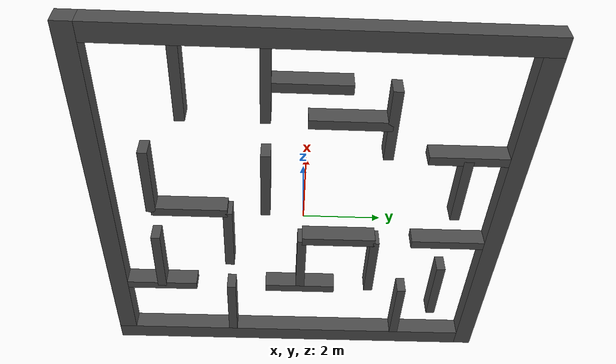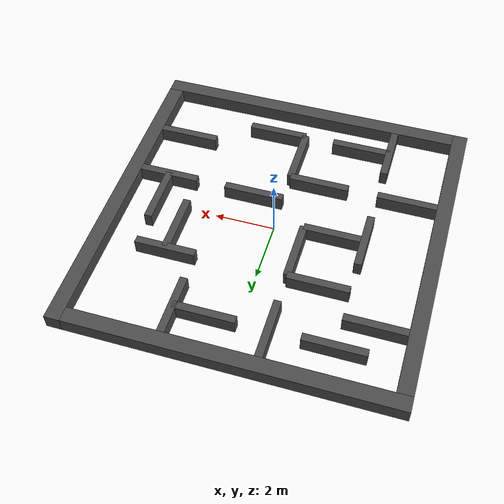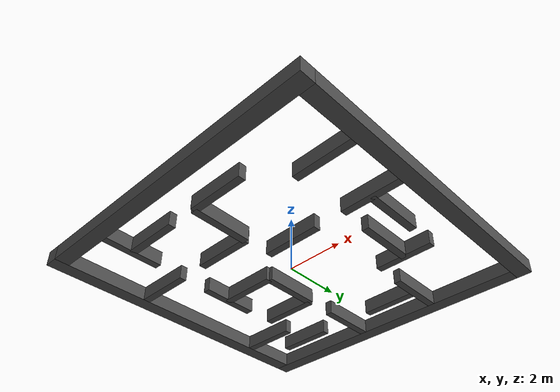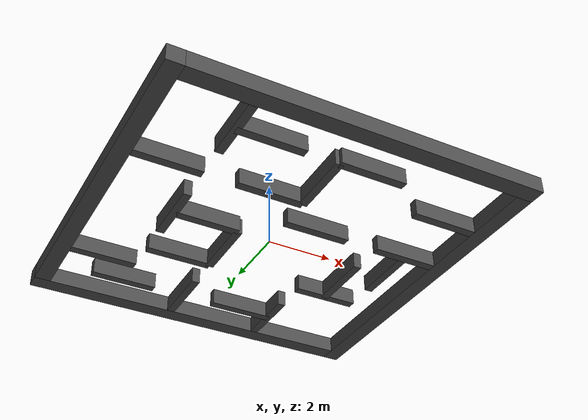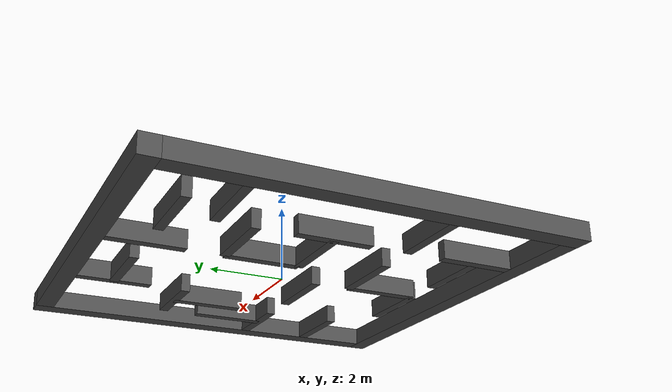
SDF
<?xml version='1.0'?>
<sdf version='1.7'>
  <model name='maze_light'>
    <pose>0 0 0 0 0 0</pose>
    <link name='Outer_Wall_0'>
      <collision name='Wall_0_Collision'>
        <geometry>
          <box>
            <size>10.5 0.5 0.5</size>
          </box>
        </geometry>
        <pose>0 0 0 0 -0 0</pose>
      </collision>
      <visual name='Wall_0_Visual'>
        <pose>0 0 0 0 -0 0</pose>
        <geometry>
          <box>
            <size>10.5 0.5 0.5</size>
          </box>
        </geometry>
        <material>
          <script>
            <uri>file://media/materials/scripts/gazebo.material</uri>
            <name>Gazebo/DarkGrey</name>
          </script>
          <ambient>0 0 0 1</ambient>
        </material>
        <meta>
          <layer>0</layer>
        </meta>
      </visual>
      <pose>5.25 0.25 0.25 0 0 -1.5708</pose>
    </link>
    <link name='Outer_Wall_1'>
      <collision name='Wall_1_Collision'>
        <geometry>
          <box>
            <size>10.5 0.5 0.5</size>
          </box>
        </geometry>
        <pose>0 0 0 0 -0 0</pose>
      </collision>
      <visual name='Wall_1_Visual'>
        <pose>0 0 0 0 -0 0</pose>
        <geometry>
          <box>
            <size>10.5 0.5 0.5</size>
          </box>
        </geometry>
        <material>
          <script>
            <uri>file://media/materials/scripts/gazebo.material</uri>
            <name>Gazebo/DarkGrey</name>
          </script>
          <ambient>0 0 0 1</ambient>
        </material>
        <meta>
          <layer>0</layer>
        </meta>
      </visual>
      <pose>-0.25 5.25 0.25 0 0 0</pose>
    </link>
    <link name='Outer_Wall_2'>
      <collision name='Wall_2_Collision'>
        <geometry>
          <box>
            <size>10.5 0.5 0.5</size>
          </box>
        </geometry>
        <pose>0 0 0 0 -0 0</pose>
      </collision>
      <visual name='Wall_2_Visual'>
        <pose>0 0 0 0 -0 0</pose>
        <geometry>
          <box>
            <size>10.5 0.5 0.5</size>
          </box>
        </geometry>
        <material>
          <script>
            <uri>file://media/materials/scripts/gazebo.material</uri>
            <name>Gazebo/DarkGrey</name>
          </script>
          <ambient>0 0 0 1</ambient>
        </material>
        <meta>
          <layer>0</layer>
        </meta>
      </visual>
      <pose>-5.25 -0.25 0.25 0 0 1.5708</pose>
    </link>
    <link name='Outer_Wall_3'>
      <collision name='Wall_3_Collision'>
        <geometry>
          <box>
            <size>10.5 0.5 0.5</size>
          </box>
        </geometry>
        <pose>0 0 0 0 -0 0</pose>
      </collision>
      <visual name='Wall_3_Visual'>
        <pose>0 0 0 0 -0 0</pose>
        <geometry>
          <box>
            <size>10.5 0.5 0.5</size>
          </box>
        </geometry>
        <material>
          <script>
            <uri>file://media/materials/scripts/gazebo.material</uri>
            <name>Gazebo/DarkGrey</name>
          </script>
          <ambient>0 0 0 1</ambient>
        </material>
        <meta>
          <layer>0</layer>
        </meta>
      </visual>
      <pose>0.25 -5.25 0.25 0 0 0</pose>
    </link>
    <link name='Inner_Wall_0'>
      <collision name='Inner_Wall_0_Collision'>
        <geometry>
          <box>
            <size>2 0.25 0.5</size>
          </box>
        </geometry>
        <pose>0 0 0 0 -0 0</pose>
      </collision>
      <visual name='Inner_Wall_0_Visual'>
        <pose>0 0 0 0 -0 0</pose>
        <geometry>
          <box>
            <size>2 0.25 0.5</size>
          </box>
        </geometry>
        <material>
          <script>
            <uri>file://media/materials/scripts/gazebo.material</uri>
            <name>Gazebo/DarkGrey</name>
          </script>
          <ambient>0 0 0 1</ambient>
        </material>
        <meta>
          <layer>0</layer>
        </meta>
      </visual>
      <pose>4 -3 0.25 0 -0 0</pose>
    </link>
    <link name='Inner_Wall_1'>
      <collision name='Inner_Wall_1_Collision'>
        <geometry>
          <box>
            <size>2 0.25 0.5</size>
          </box>
        </geometry>
        <pose>0 0 0 0 -0 0</pose>
      </collision>
      <visual name='Inner_Wall_1_Visual'>
        <pose>0 0 0 0 -0 0</pose>
        <geometry>
          <box>
            <size>2 0.25 0.5</size>
          </box>
        </geometry>
        <material>
          <script>
            <uri>file://media/materials/scripts/gazebo.material</uri>
            <name>Gazebo/DarkGrey</name>
          </script>
          <ambient>0 0 0 1</ambient>
        </material>
        <meta>
          <layer>0</layer>
        </meta>
      </visual>
      <pose>4 -1 0.25 0 -0 0</pose>
    </link>
    <link name='Inner_Wall_2'>
      <collision name='Inner_Wall_2_Collision'>
        <geometry>
          <box>
            <size>2 0.25 0.5</size>
          </box>
        </geometry>
        <pose>0 0 0 0 -0 0</pose>
      </collision>
      <visual name='Inner_Wall_2_Visual'>
        <pose>0 0 0 0 -0 0</pose>
        <geometry>
          <box>
            <size>2 0.25 0.5</size>
          </box>
        </geometry>
        <material>
          <script>
            <uri>file://media/materials/scripts/gazebo.material</uri>
            <name>Gazebo/DarkGrey</name>
          </script>
          <ambient>0 0 0 1</ambient>
        </material>
        <meta>
          <layer>0</layer>
        </meta>
      </visual>
      <pose>1 4 0.25 0 -0 0</pose>
    </link>
    <link name='Inner_Wall_3'>
      <collision name='Inner_Wall_3_Collision'>
        <geometry>
          <box>
            <size>2 0.25 0.5</size>
          </box>
        </geometry>
        <pose>0 0 0 0 -0 0</pose>
      </collision>
      <visual name='Inner_Wall_3_Visual'>
        <pose>0 0 0 0 -0 0</pose>
        <geometry>
          <box>
            <size>2 0.25 0.5</size>
          </box>
        </geometry>
        <material>
          <script>
            <uri>file://media/materials/scripts/gazebo.material</uri>
            <name>Gazebo/DarkGrey</name>
          </script>
          <ambient>0 0 0 1</ambient>
        </material>
        <meta>
          <layer>0</layer>
        </meta>
      </visual>
      <pose>2 4 0.25 0 -0 1.5708</pose>
    </link>
    <link name='Inner_Wall_4'>
      <collision name='Inner_Wall_4_Collision'>
        <geometry>
          <box>
            <size>2 0.25 0.5</size>
          </box>
        </geometry>
        <pose>0 0 0 0 -0 0</pose>
      </collision>
      <visual name='Inner_Wall_4_Visual'>
        <pose>0 0 0 0 -0 0</pose>
        <geometry>
          <box>
            <size>2 0.25 0.5</size>
          </box>
        </geometry>
        <material>
          <script>
            <uri>file://media/materials/scripts/gazebo.material</uri>
            <name>Gazebo/DarkGrey</name>
          </script>
          <ambient>0 0 0 1</ambient>
        </material>
        <meta>
          <layer>0</layer>
        </meta>
      </visual>
      <pose>-1 4 0.25 0 -0 1.5708</pose>
    </link>
    <link name='Inner_Wall_5'>
      <collision name='Inner_Wall_5_Collision'>
        <geometry>
          <box>
            <size>2 0.25 0.5</size>
          </box>
        </geometry>
        <pose>0 0 0 0 -0 0</pose>
      </collision>
      <visual name='Inner_Wall_5_Visual'>
        <pose>0 0 0 0 -0 0</pose>
        <geometry>
          <box>
            <size>2 0.25 0.5</size>
          </box>
        </geometry>
        <material>
          <script>
            <uri>file://media/materials/scripts/gazebo.material</uri>
            <name>Gazebo/DarkGrey</name>
          </script>
          <ambient>0 0 0 1</ambient>
        </material>
        <meta>
          <layer>0</layer>
        </meta>
      </visual>
      <pose>-2 2 0.25 0 -0 0</pose>
    </link>
    <link name='Inner_Wall_6'>
      <collision name='Inner_Wall_6_Collision'>
        <geometry>
          <box>
            <size>2 0.25 0.5</size>
          </box>
        </geometry>
        <pose>0 0 0 0 -0 0</pose>
      </collision>
      <visual name='Inner_Wall_6_Visual'>
        <pose>0 0 0 0 -0 0</pose>
        <geometry>
          <box>
            <size>2 0.25 0.5</size>
          </box>
        </geometry>
        <material>
          <script>
            <uri>file://media/materials/scripts/gazebo.material</uri>
            <name>Gazebo/DarkGrey</name>
          </script>
          <ambient>0 0 0 1</ambient>
        </material>
        <meta>
          <layer>0</layer>
        </meta>
      </visual>
      <pose>-2 0 0.25 0 -0 0</pose>
    </link>
    <link name='Inner_Wall_7'>
      <collision name='Inner_Wall_7_Collision'>
        <geometry>
          <box>
            <size>2 0.25 0.5</size>
          </box>
        </geometry>
        <pose>0 0 0 0 -0 0</pose>
      </collision>
      <visual name='Inner_Wall_7_Visual'>
        <pose>0 0 0 0 -0 0</pose>
        <geometry>
          <box>
            <size>2 0.25 0.5</size>
          </box>
        </geometry>
        <material>
          <script>
            <uri>file://media/materials/scripts/gazebo.material</uri>
            <name>Gazebo/DarkGrey</name>
          </script>
          <ambient>0 0 0 1</ambient>
        </material>
        <meta>
          <layer>0</layer>
        </meta>
      </visual>
      <pose>-1 -2 0.25 0 -0 0</pose>
    </link>
    <link name='Inner_Wall_8'>
      <collision name='Inner_Wall_8_Collision'>
        <geometry>
          <box>
            <size>2 0.25 0.5</size>
          </box>
        </geometry>
        <pose>0 0 0 0 -0 0</pose>
      </collision>
      <visual name='Inner_Wall_8_Visual'>
        <pose>0 0 0 0 -0 0</pose>
        <geometry>
          <box>
            <size>2 0.25 0.5</size>
          </box>
        </geometry>
        <material>
          <script>
            <uri>file://media/materials/scripts/gazebo.material</uri>
            <name>Gazebo/DarkGrey</name>
          </script>
          <ambient>0 0 0 1</ambient>
        </material>
        <meta>
          <layer>0</layer>
        </meta>
      </visual>
      <pose>1 -4 0.25 0 -0 0</pose>
    </link>
    <link name='Inner_Wall_9'>
      <collision name='Inner_Wall_9_Collision'>
        <geometry>
          <box>
            <size>2 0.25 0.5</size>
          </box>
        </geometry>
        <pose>0 0 0 0 -0 0</pose>
      </collision>
      <visual name='Inner_Wall_9_Visual'>
        <pose>0 0 0 0 -0 0</pose>
        <geometry>
          <box>
            <size>2 0.25 0.5</size>
          </box>
        </geometry>
        <material>
          <script>
            <uri>file://media/materials/scripts/gazebo.material</uri>
            <name>Gazebo/DarkGrey</name>
          </script>
          <ambient>0 0 0 1</ambient>
        </material>
        <meta>
          <layer>0</layer>
        </meta>
      </visual>
      <pose>3 2 0.25 0 -0 0</pose>
    </link>
    <link name='Inner_Wall_10'>
      <collision name='Inner_Wall_10_Collision'>
        <geometry>
          <box>
            <size>2 0.25 0.5</size>
          </box>
        </geometry>
        <pose>0 0 0 0 -0 0</pose>
      </collision>
      <visual name='Inner_Wall_10_Visual'>
        <pose>0 0 0 0 -0 0</pose>
        <geometry>
          <box>
            <size>2 0.25 0.5</size>
          </box>
        </geometry>
        <material>
          <script>
            <uri>file://media/materials/scripts/gazebo.material</uri>
            <name>Gazebo/DarkGrey</name>
          </script>
          <ambient>0 0 0 1</ambient>
        </material>
        <meta>
          <layer>0</layer>
        </meta>
      </visual>
      <pose>3 1 0.25 0 -0 1.5708</pose>
    </link>
    <link name='Inner_Wall_11'>
      <collision name='Inner_Wall_11_Collision'>
        <geometry>
          <box>
            <size>2 0.25 0.5</size>
          </box>
        </geometry>
        <pose>0 0 0 0 -0 0</pose>
      </collision>
      <visual name='Inner_Wall_11_Visual'>
        <pose>0 0 0 0 -0 0</pose>
        <geometry>
          <box>
            <size>2 0.25 0.5</size>
          </box>
        </geometry>
        <material>
          <script>
            <uri>file://media/materials/scripts/gazebo.material</uri>
            <name>Gazebo/DarkGrey</name>
          </script>
          <ambient>0 0 0 1</ambient>
        </material>
        <meta>
          <layer>0</layer>
        </meta>
      </visual>
      <pose>-1 1 0.25 0 -0 1.5708</pose>
    </link>
    <link name='Inner_Wall_12'>
      <collision name='Inner_Wall_12_Collision'>
        <geometry>
          <box>
            <size>2 0.25 0.5</size>
          </box>
        </geometry>
        <pose>0 0 0 0 -0 0</pose>
      </collision>
      <visual name='Inner_Wall_12_Visual'>
        <pose>0 0 0 0 -0 0</pose>
        <geometry>
          <box>
            <size>2 0.25 0.5</size>
          </box>
        </geometry>
        <material>
          <script>
            <uri>file://media/materials/scripts/gazebo.material</uri>
            <name>Gazebo/DarkGrey</name>
          </script>
          <ambient>0 0 0 1</ambient>
        </material>
        <meta>
          <layer>0</layer>
        </meta>
      </visual>
      <pose>0 -3 0.25 0 -0 1.5708</pose>
    </link>
    <link name='Inner_Wall_13'>
      <collision name='Inner_Wall_13_Collision'>
        <geometry>
          <box>
            <size>2 0.25 0.5</size>
          </box>
        </geometry>
        <pose>0 0 0 0 -0 0</pose>
      </collision>
      <visual name='Inner_Wall_13_Visual'>
        <pose>0 0 0 0 -0 0</pose>
        <geometry>
          <box>
            <size>2 0.25 0.5</size>
          </box>
        </geometry>
        <material>
          <script>
            <uri>file://media/materials/scripts/gazebo.material</uri>
            <name>Gazebo/DarkGrey</name>
          </script>
          <ambient>0 0 0 1</ambient>
        </material>
        <meta>
          <layer>0</layer>
        </meta>
      </visual>
      <pose>1 -1 0.25 0 -0 0</pose>
    </link>
    <link name='Inner_Wall_14'>
      <collision name='Inner_Wall_14_Collision'>
        <geometry>
          <box>
            <size>2 0.25 0.5</size>
          </box>
        </geometry>
        <pose>0 0 0 0 -0 0</pose>
      </collision>
      <visual name='Inner_Wall_14_Visual'>
        <pose>0 0 0 0 -0 0</pose>
        <geometry>
          <box>
            <size>2 0.25 0.5</size>
          </box>
        </geometry>
        <material>
          <script>
            <uri>file://media/materials/scripts/gazebo.material</uri>
            <name>Gazebo/DarkGrey</name>
          </script>
          <ambient>0 0 0 1</ambient>
        </material>
        <meta>
          <layer>0</layer>
        </meta>
      </visual>
      <pose>-3 4 0.25 0 -0 0</pose>
    </link>
    <link name='Inner_Wall_15'>
      <collision name='Inner_Wall_15_Collision'>
        <geometry>
          <box>
            <size>2 0.25 0.5</size>
          </box>
        </geometry>
        <pose>0 0 0 0 -0 0</pose>
      </collision>
      <visual name='Inner_Wall_15_Visual'>
        <pose>0 0 0 0 -0 0</pose>
        <geometry>
          <box>
            <size>2 0.25 0.5</size>
          </box>
        </geometry>
        <material>
          <script>
            <uri>file://media/materials/scripts/gazebo.material</uri>
            <name>Gazebo/DarkGrey</name>
          </script>
          <ambient>0 0 0 1</ambient>
        </material>
        <meta>
          <layer>0</layer>
        </meta>
      </visual>
      <pose>4 0 0.25 0 -0 1.5708</pose>
    </link>
    <link name='Inner_Wall_16'>
      <collision name='Inner_Wall_16_Collision'>
        <geometry>
          <box>
            <size>2 0.25 0.5</size>
          </box>
        </geometry>
        <pose>0 0 0 0 -0 0</pose>
      </collision>
      <visual name='Inner_Wall_16_Visual'>
        <pose>0 0 0 0 -0 0</pose>
        <geometry>
          <box>
            <size>2 0.25 0.5</size>
          </box>
        </geometry>
        <material>
          <script>
            <uri>file://media/materials/scripts/gazebo.material</uri>
            <name>Gazebo/DarkGrey</name>
          </script>
          <ambient>0 0 0 1</ambient>
        </material>
        <meta>
          <layer>0</layer>
        </meta>
      </visual>
      <pose>-4 3 0.25 0 -0 0</pose>
    </link>
    <link name='Inner_Wall_17'>
      <collision name='Inner_Wall_17_Collision'>
        <geometry>
          <box>
            <size>2 0.25 0.5</size>
          </box>
        </geometry>
        <pose>0 0 0 0 -0 0</pose>
      </collision>
      <visual name='Inner_Wall_17_Visual'>
        <pose>0 0 0 0 -0 0</pose>
        <geometry>
          <box>
            <size>2 0.25 0.5</size>
          </box>
        </geometry>
        <material>
          <script>
            <uri>file://media/materials/scripts/gazebo.material</uri>
            <name>Gazebo/DarkGrey</name>
          </script>
          <ambient>0 0 0 1</ambient>
        </material>
        <meta>
          <layer>0</layer>
        </meta>
      </visual>
      <pose>-3 0 0.25 0 -0 1.5708</pose>
    </link>
    <link name='Inner_Wall_18'>
      <collision name='Inner_Wall_18_Collision'>
        <geometry>
          <box>
            <size>2 0.25 0.5</size>
          </box>
        </geometry>
        <pose>0 0 0 0 -0 0</pose>
      </collision>
      <visual name='Inner_Wall_18_Visual'>
        <pose>0 0 0 0 -0 0</pose>
        <geometry>
          <box>
            <size>2 0.25 0.5</size>
          </box>
        </geometry>
        <material>
          <script>
            <uri>file://media/materials/scripts/gazebo.material</uri>
            <name>Gazebo/DarkGrey</name>
          </script>
          <ambient>0 0 0 1</ambient>
        </material>
        <meta>
          <layer>0</layer>
        </meta>
      </visual>
      <pose>-4 -2 0.25 0 -0 0</pose>
    </link>
    <link name='Inner_Wall_19'>
      <collision name='Inner_Wall_19_Collision'>
        <geometry>
          <box>
            <size>2 0.25 0.5</size>
          </box>
        </geometry>
        <pose>0 0 0 0 -0 0</pose>
      </collision>
      <visual name='Inner_Wall_19_Visual'>
        <pose>0 0 0 0 -0 0</pose>
        <geometry>
          <box>
            <size>2 0.25 0.5</size>
          </box>
        </geometry>
        <material>
          <script>
            <uri>file://media/materials/scripts/gazebo.material</uri>
            <name>Gazebo/DarkGrey</name>
          </script>
          <ambient>0 0 0 1</ambient>
        </material>
        <meta>
          <layer>0</layer>
        </meta>
      </visual>
      <pose>-3 -4 0.25 0 -0 1.5708</pose>
    </link>
    <link name='Inner_Wall_20'>
      <collision name='Inner_Wall_20_Collision'>
        <geometry>
          <box>
            <size>2 0.25 0.5</size>
          </box>
        </geometry>
        <pose>0 0 0 0 -0 0</pose>
      </collision>
      <visual name='Inner_Wall_20_Visual'>
        <pose>0 0 0 0 -0 0</pose>
        <geometry>
          <box>
            <size>2 0.25 0.5</size>
          </box>
        </geometry>
        <material>
          <script>
            <uri>file://media/materials/scripts/gazebo.material</uri>
            <name>Gazebo/DarkGrey</name>
          </script>
          <ambient>0 0 0 1</ambient>
        </material>
        <meta>
          <layer>0</layer>
        </meta>
      </visual>
      <pose>-2 -4 0.25 0 -0 0</pose>
    </link>

    <link name='light_link_0'>
      <pose>-10.5434 0 10.6208 0 -0.563594 0</pose>
      <light name='user_spot_light_0' type='spot'>
        <pose>-1.96683 0.902064 1 0 -0 0</pose>
        <diffuse>0.5 0.5 0.5 1</diffuse>
        <specular>0.1 0.1 0.1 1</specular>
        <direction>0 0 -1</direction>
        <attenuation>
          <range>20</range>
          <constant>0.5</constant>
          <linear>0.01</linear>
          <quadratic>0.001</quadratic>
        </attenuation>
        <cast_shadows>0</cast_shadows>
        <spot>
          <inner_angle>0.6</inner_angle>
          <outer_angle>1</outer_angle>
          <falloff>1</falloff>
        </spot>
      </light>
    </link>

    <link name='light_link_1'>
      <pose>0 -15.0454 11.2272 0.969351 -0 0</pose>
      <light name='user_spot_light_1' type='spot'>
        <pose>0 -8 1 0 -0 0</pose>
        <diffuse>0.5 0.5 0.5 1</diffuse>
        <specular>0.1 0.1 0.1 1</specular>
        <direction>0 0 -1</direction>
        <attenuation>
          <range>30</range>
          <constant>0.5</constant>
          <linear>0.01</linear>
          <quadratic>0.001</quadratic>
        </attenuation>
        <cast_shadows>0</cast_shadows>
        <spot>
          <inner_angle>0.6</inner_angle>
          <outer_angle>1</outer_angle>
          <falloff>1</falloff>
        </spot>
      </light>
    </link>

    <link name='light_link_2'>
      <pose>12.553316 0 8 0 0.78597 0</pose>
      <light name='user_spot_light_2' type='spot'>
        <pose>0 0 0 0 0 0</pose>
        <diffuse>0.5 0.5 0.5 1</diffuse>
        <specular>0.1 0.1 0.1 1</specular>
        <direction>0 0 -1</direction>
        <attenuation>
          <range>20</range>
          <constant>0.5</constant>
          <linear>0.01</linear>
          <quadratic>0.001</quadratic>
        </attenuation>
        <cast_shadows>0</cast_shadows>
        <spot>
          <inner_angle>0.6</inner_angle>
          <outer_angle>1</outer_angle>
          <falloff>1</falloff>
        </spot>
      </light>
    </link>

    <link name='light_link_3'>
      <pose>0 19.210722 14.210317 -1.075717 0 0</pose>
      <light name='user_spot_light_3' type='spot'>
        <pose>0 0 0 0 0 0</pose>
        <diffuse>0.5 0.5 0.5 1</diffuse>
        <specular>0.1 0.1 0.1 1</specular>
        <direction>0 0 -1</direction>
        <attenuation>
          <range>30</range>
          <constant>0.5</constant>
          <linear>0.01</linear>
          <quadratic>0.001</quadratic>
        </attenuation>
        <cast_shadows>0</cast_shadows>
        <spot>
          <inner_angle>0.6</inner_angle>
          <outer_angle>1</outer_angle>
          <falloff>1</falloff>
        </spot>
      </light>
    </link>

    <static>1</static>
  </model>

</sdf>
